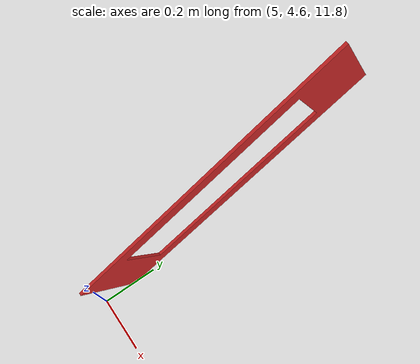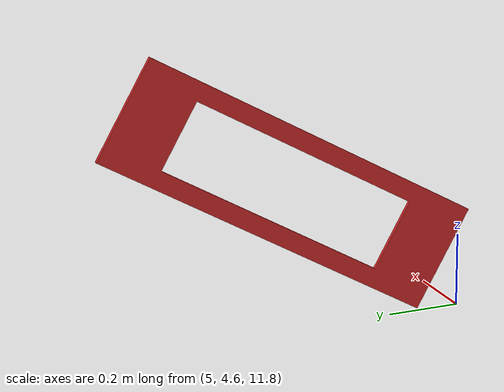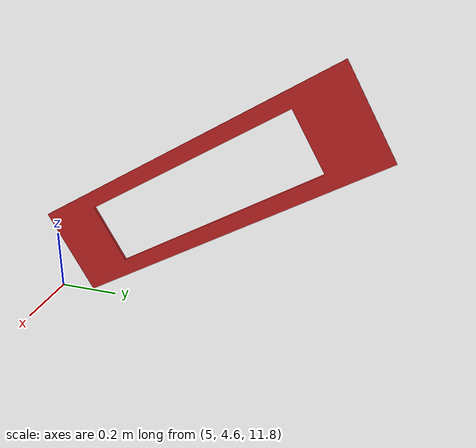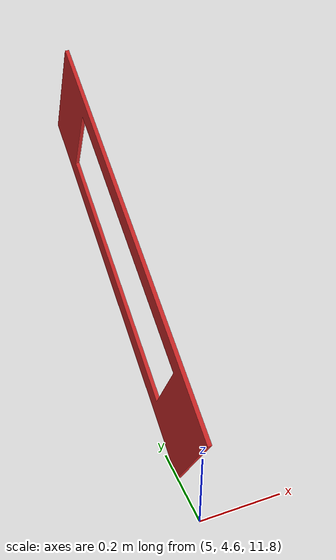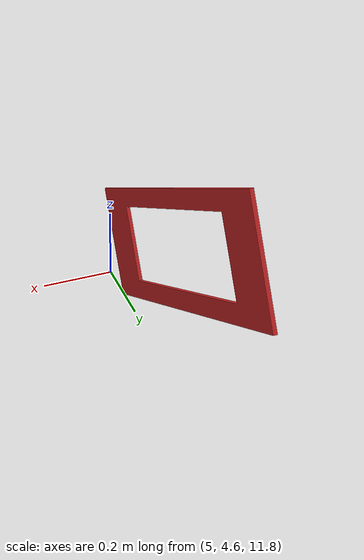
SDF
<sdf version='1.6'>
  <model name='slit'>
    <link name='slit_link'>
        <static>true</static>
        <gravity>0</gravity>
        <pose frame=''>5.0 5.1 12.2 0.5233 0 0.0</pose>
      <inertial>
        <pose frame=''>0.0 0.0 0.0 0 -0 0</pose>
        <mass>100.0</mass>
        <inertia>
          <ixx>10</ixx>
          <ixy>0</ixy>
          <ixz>0</ixz>
          <iyy>10</iyy>
          <iyz>0</iyz>
          <izz>10</izz>
        </inertia>
      </inertial>
      <collision name='slit_collision'>
        <pose frame=''>0 0 0 0 -0 0</pose>
       <geometry>
          <mesh>
            <scale>0.001 0.001 0.001</scale>
            <uri>model://slit/meshes/slit2.STL</uri>
          </mesh>
        </geometry>
        <surface>
          <contact>
            <ode>
              <max_vel>0.0</max_vel>
              <min_depth>0.001</min_depth>
            </ode>
          </contact>
          <friction>
            <ode>
              <mu>1.0</mu>
              <mu2>1.0</mu2>
            </ode>
          </friction>
        </surface>
      </collision>
      <visual name='slit_visual'>
        <pose frame=''>0 0 0 0 -0 0</pose>
        <geometry>
          <mesh>
            <scale>0.001 0.001 0.001</scale>
            <uri>model://slit/meshes/slit2.STL</uri>
          </mesh>
        </geometry>
        <material>
          <script>
            <name>Gazebo/Red</name>
          </script>
        </material>
      </visual>
    </link>
  </model>
</sdf>
